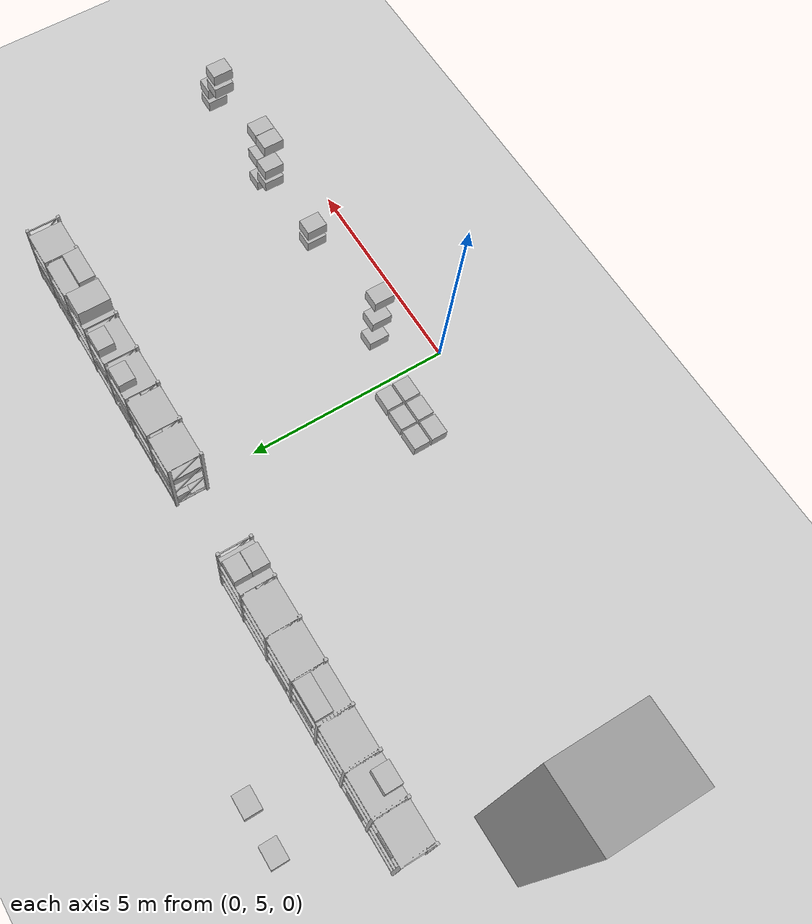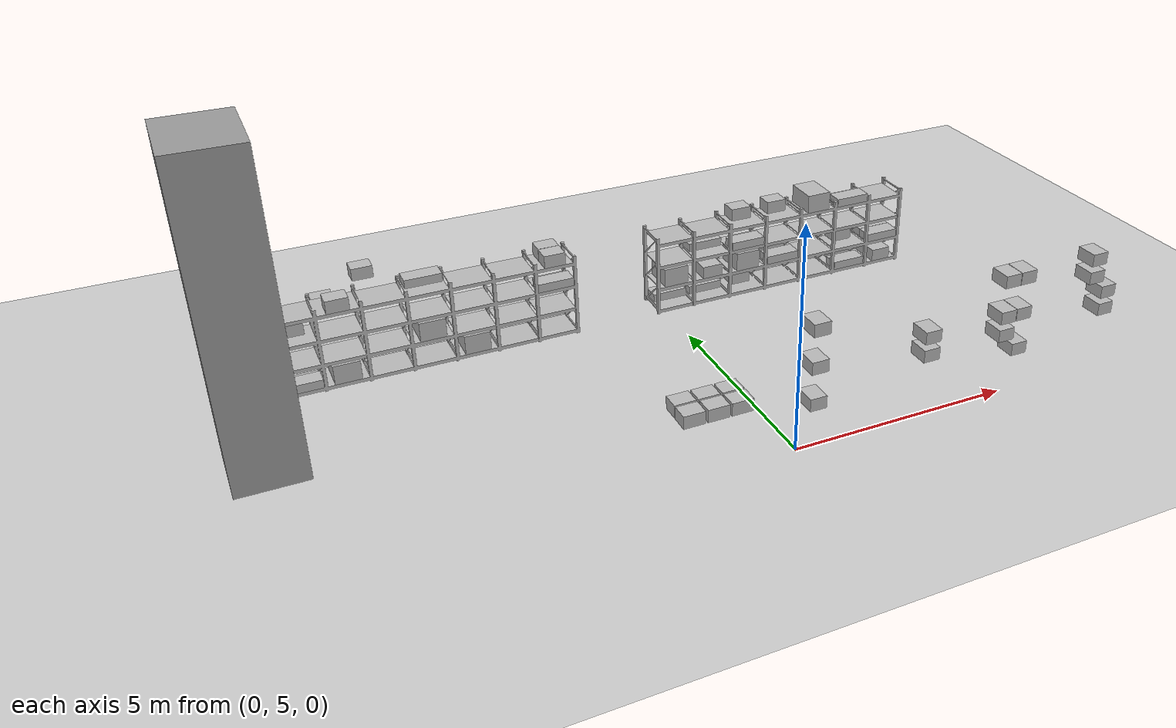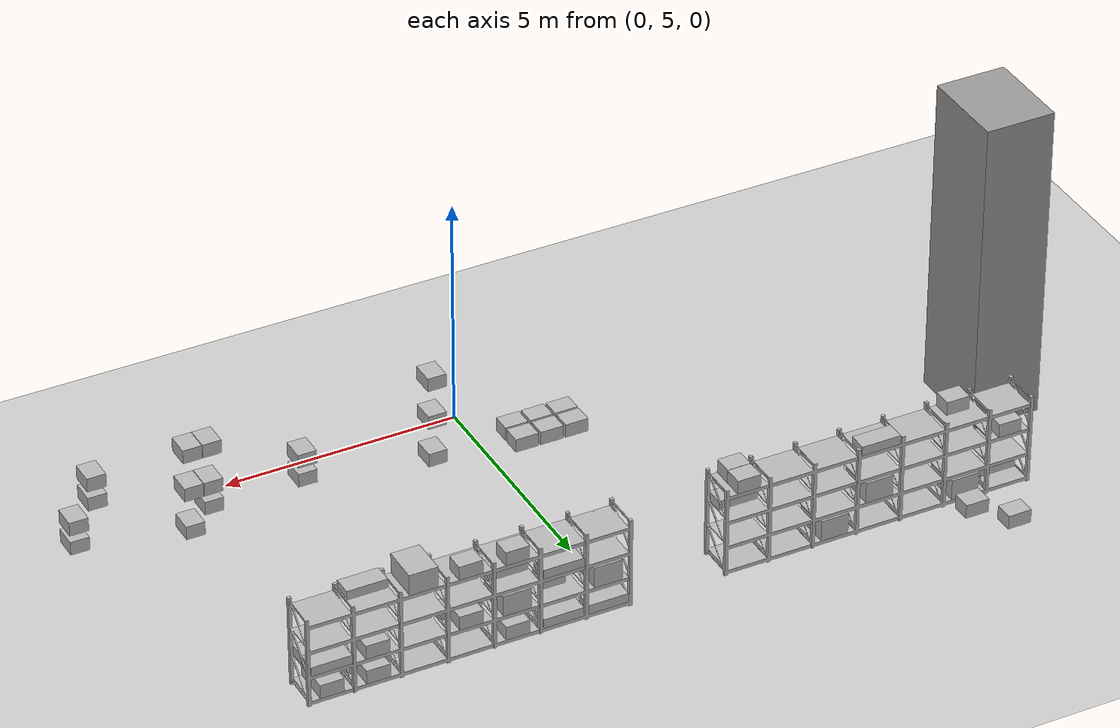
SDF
<sdf version="1.6">
 <world name="default">
  <model name="ground_plane">
   <static>1</static>
   <link name="link">
    <collision name="collision">
     <geometry><plane><normal>0 0 1</normal><size>100 100</size></plane></geometry>
     <surface><friction><ode><mu>100</mu><mu2>50</mu2></ode></friction></surface>
    </collision>
    <visual name="visual">
     <cast_shadows>0</cast_shadows>
     <geometry><plane><normal>0 0 1</normal><size>100 100</size></plane></geometry>
     <material>
      <script><uri>file://media/materials/scripts/gazebo.material</uri><name>Gazebo/Grey</name></script>
     </material>
    </visual>
   </link>
  </model>
  <model name="box_A_045">
   <pose>1.0549 6.1491 0.252 0 0 0</pose>
   <link name="link">
    <inertial>
     <mass>2.0</mass>
     <inertia><ixx>0.05667</ixx><iyy>0.04167</iyy><izz>0.06833</izz><ixy>0</ixy><ixz>0</ixz><iyz>0</iyz></inertia>
    </inertial>
    <collision name="collision">
     <geometry><box><size>0.4 0.5 0.3</size></box></geometry>
     <surface><friction><ode><mu>1.0</mu><mu2>1.0</mu2></ode></friction></surface>
    </collision>
    <visual name="visual">
     <cast_shadows>0</cast_shadows>
     <geometry><box><size>0.4 0.5 0.3</size></box></geometry>
     <material>
      <script>
       <uri>model://labeled_boxes/materials/scripts</uri>
       <uri>model://labeled_boxes/materials/textures</uri>
       <name>LabeledBox/A-045</name>
      </script>
     </material>
    </visual>
   </link>
  </model>
  <model name="box_A_046">
   <pose>1.0549 6.1491 1.152 0 0 0</pose>
   <link name="link">
    <inertial>
     <mass>2.0</mass>
     <inertia><ixx>0.05667</ixx><iyy>0.04167</iyy><izz>0.06833</izz><ixy>0</ixy><ixz>0</ixz><iyz>0</iyz></inertia>
    </inertial>
    <collision name="collision">
     <geometry><box><size>0.4 0.5 0.3</size></box></geometry>
     <surface><friction><ode><mu>1.0</mu><mu2>1.0</mu2></ode></friction></surface>
    </collision>
    <visual name="visual">
     <cast_shadows>0</cast_shadows>
     <geometry><box><size>0.4 0.5 0.3</size></box></geometry>
     <material>
      <script>
       <uri>model://labeled_boxes/materials/scripts</uri>
       <uri>model://labeled_boxes/materials/textures</uri>
       <name>LabeledBox/A-046</name>
      </script>
     </material>
    </visual>
   </link>
  </model>
  <model name="box_A_047">
   <pose>1.0549 6.1491 2.052 0 0 0</pose>
   <link name="link">
    <inertial>
     <mass>2.0</mass>
     <inertia><ixx>0.05667</ixx><iyy>0.04167</iyy><izz>0.06833</izz><ixy>0</ixy><ixz>0</ixz><iyz>0</iyz></inertia>
    </inertial>
    <collision name="collision">
     <geometry><box><size>0.4 0.5 0.3</size></box></geometry>
     <surface><friction><ode><mu>1.0</mu><mu2>1.0</mu2></ode></friction></surface>
    </collision>
    <visual name="visual">
     <cast_shadows>0</cast_shadows>
     <geometry><box><size>0.4 0.5 0.3</size></box></geometry>
     <material>
      <script>
       <uri>model://labeled_boxes/materials/scripts</uri>
       <uri>model://labeled_boxes/materials/textures</uri>
       <name>LabeledBox/A-047</name>
      </script>
     </material>
    </visual>
   </link>
  </model>
  <model name="box_A_079">
   <pose>3.8649 6.1491 0.702 0 0 0</pose>
   <link name="link">
    <inertial>
     <mass>2.0</mass>
     <inertia><ixx>0.05667</ixx><iyy>0.04167</iyy><izz>0.06833</izz><ixy>0</ixy><ixz>0</ixz><iyz>0</iyz></inertia>
    </inertial>
    <collision name="collision">
     <geometry><box><size>0.4 0.5 0.3</size></box></geometry>
     <surface><friction><ode><mu>1.0</mu><mu2>1.0</mu2></ode></friction></surface>
    </collision>
    <visual name="visual">
     <cast_shadows>0</cast_shadows>
     <geometry><box><size>0.4 0.5 0.3</size></box></geometry>
     <material>
      <script>
       <uri>model://labeled_boxes/materials/scripts</uri>
       <uri>model://labeled_boxes/materials/textures</uri>
       <name>LabeledBox/A-079</name>
      </script>
     </material>
    </visual>
   </link>
  </model>
  <model name="box_A_080">
   <pose>3.8649 6.1491 1.152 0 0 0</pose>
   <link name="link">
    <inertial>
     <mass>2.0</mass>
     <inertia><ixx>0.05667</ixx><iyy>0.04167</iyy><izz>0.06833</izz><ixy>0</ixy><ixz>0</ixz><iyz>0</iyz></inertia>
    </inertial>
    <collision name="collision">
     <geometry><box><size>0.4 0.5 0.3</size></box></geometry>
     <surface><friction><ode><mu>1.0</mu><mu2>1.0</mu2></ode></friction></surface>
    </collision>
    <visual name="visual">
     <cast_shadows>0</cast_shadows>
     <geometry><box><size>0.4 0.5 0.3</size></box></geometry>
     <material>
      <script>
       <uri>model://labeled_boxes/materials/scripts</uri>
       <uri>model://labeled_boxes/materials/textures</uri>
       <name>LabeledBox/A-080</name>
      </script>
     </material>
    </visual>
   </link>
  </model>
  <model name="box_A_105">
   <pose>6.2649 6.1491 0.252 0 0 0</pose>
   <link name="link">
    <inertial>
     <mass>2.0</mass>
     <inertia><ixx>0.05667</ixx><iyy>0.04167</iyy><izz>0.06833</izz><ixy>0</ixy><ixz>0</ixz><iyz>0</iyz></inertia>
    </inertial>
    <collision name="collision">
     <geometry><box><size>0.4 0.5 0.3</size></box></geometry>
     <surface><friction><ode><mu>1.0</mu><mu2>1.0</mu2></ode></friction></surface>
    </collision>
    <visual name="visual">
     <cast_shadows>0</cast_shadows>
     <geometry><box><size>0.4 0.5 0.3</size></box></geometry>
     <material>
      <script>
       <uri>model://labeled_boxes/materials/scripts</uri>
       <uri>model://labeled_boxes/materials/textures</uri>
       <name>LabeledBox/A-105</name>
      </script>
     </material>
    </visual>
   </link>
  </model>
  <model name="box_A_106">
   <pose>5.8549 6.1491 0.702 0 0 0</pose>
   <link name="link">
    <inertial>
     <mass>2.0</mass>
     <inertia><ixx>0.05667</ixx><iyy>0.04167</iyy><izz>0.06833</izz><ixy>0</ixy><ixz>0</ixz><iyz>0</iyz></inertia>
    </inertial>
    <collision name="collision">
     <geometry><box><size>0.4 0.5 0.3</size></box></geometry>
     <surface><friction><ode><mu>1.0</mu><mu2>1.0</mu2></ode></friction></surface>
    </collision>
    <visual name="visual">
     <cast_shadows>0</cast_shadows>
     <geometry><box><size>0.4 0.5 0.3</size></box></geometry>
     <material>
      <script>
       <uri>model://labeled_boxes/materials/scripts</uri>
       <uri>model://labeled_boxes/materials/textures</uri>
       <name>LabeledBox/A-106</name>
      </script>
     </material>
    </visual>
   </link>
  </model>
  <model name="box_A_107">
   <pose>5.8549 6.1491 1.152 0 0 0</pose>
   <link name="link">
    <inertial>
     <mass>2.0</mass>
     <inertia><ixx>0.05667</ixx><iyy>0.04167</iyy><izz>0.06833</izz><ixy>0</ixy><ixz>0</ixz><iyz>0</iyz></inertia>
    </inertial>
    <collision name="collision">
     <geometry><box><size>0.4 0.5 0.3</size></box></geometry>
     <surface><friction><ode><mu>1.0</mu><mu2>1.0</mu2></ode></friction></surface>
    </collision>
    <visual name="visual">
     <cast_shadows>0</cast_shadows>
     <geometry><box><size>0.4 0.5 0.3</size></box></geometry>
     <material>
      <script>
       <uri>model://labeled_boxes/materials/scripts</uri>
       <uri>model://labeled_boxes/materials/textures</uri>
       <name>LabeledBox/A-107</name>
      </script>
     </material>
    </visual>
   </link>
  </model>
  <model name="box_A_108">
   <pose>6.2649 6.1491 1.152 0 0 0</pose>
   <link name="link">
    <inertial>
     <mass>2.0</mass>
     <inertia><ixx>0.05667</ixx><iyy>0.04167</iyy><izz>0.06833</izz><ixy>0</ixy><ixz>0</ixz><iyz>0</iyz></inertia>
    </inertial>
    <collision name="collision">
     <geometry><box><size>0.4 0.5 0.3</size></box></geometry>
     <surface><friction><ode><mu>1.0</mu><mu2>1.0</mu2></ode></friction></surface>
    </collision>
    <visual name="visual">
     <cast_shadows>0</cast_shadows>
     <geometry><box><size>0.4 0.5 0.3</size></box></geometry>
     <material>
      <script>
       <uri>model://labeled_boxes/materials/scripts</uri>
       <uri>model://labeled_boxes/materials/textures</uri>
       <name>LabeledBox/A-108</name>
      </script>
     </material>
    </visual>
   </link>
  </model>
  <model name="box_A_109">
   <pose>5.8549 6.1491 2.052 0 0 0</pose>
   <link name="link">
    <inertial>
     <mass>2.0</mass>
     <inertia><ixx>0.05667</ixx><iyy>0.04167</iyy><izz>0.06833</izz><ixy>0</ixy><ixz>0</ixz><iyz>0</iyz></inertia>
    </inertial>
    <collision name="collision">
     <geometry><box><size>0.4 0.5 0.3</size></box></geometry>
     <surface><friction><ode><mu>1.0</mu><mu2>1.0</mu2></ode></friction></surface>
    </collision>
    <visual name="visual">
     <cast_shadows>0</cast_shadows>
     <geometry><box><size>0.4 0.5 0.3</size></box></geometry>
     <material>
      <script>
       <uri>model://labeled_boxes/materials/scripts</uri>
       <uri>model://labeled_boxes/materials/textures</uri>
       <name>LabeledBox/A-109</name>
      </script>
     </material>
    </visual>
   </link>
  </model>
  <model name="box_A_110">
   <pose>6.2649 6.1491 2.052 0 0 0</pose>
   <link name="link">
    <inertial>
     <mass>2.0</mass>
     <inertia><ixx>0.05667</ixx><iyy>0.04167</iyy><izz>0.06833</izz><ixy>0</ixy><ixz>0</ixz><iyz>0</iyz></inertia>
    </inertial>
    <collision name="collision">
     <geometry><box><size>0.4 0.5 0.3</size></box></geometry>
     <surface><friction><ode><mu>1.0</mu><mu2>1.0</mu2></ode></friction></surface>
    </collision>
    <visual name="visual">
     <cast_shadows>0</cast_shadows>
     <geometry><box><size>0.4 0.5 0.3</size></box></geometry>
     <material>
      <script>
       <uri>model://labeled_boxes/materials/scripts</uri>
       <uri>model://labeled_boxes/materials/textures</uri>
       <name>LabeledBox/A-110</name>
      </script>
     </material>
    </visual>
   </link>
  </model>
  <model name="box_A_143">
   <pose>8.6649 6.1491 0.702 0 0 0</pose>
   <link name="link">
    <inertial>
     <mass>2.0</mass>
     <inertia><ixx>0.05667</ixx><iyy>0.04167</iyy><izz>0.06833</izz><ixy>0</ixy><ixz>0</ixz><iyz>0</iyz></inertia>
    </inertial>
    <collision name="collision">
     <geometry><box><size>0.4 0.5 0.3</size></box></geometry>
     <surface><friction><ode><mu>1.0</mu><mu2>1.0</mu2></ode></friction></surface>
    </collision>
    <visual name="visual">
     <cast_shadows>0</cast_shadows>
     <geometry><box><size>0.4 0.5 0.3</size></box></geometry>
     <material>
      <script>
       <uri>model://labeled_boxes/materials/scripts</uri>
       <uri>model://labeled_boxes/materials/textures</uri>
       <name>LabeledBox/A-143</name>
      </script>
     </material>
    </visual>
   </link>
  </model>
  <model name="box_A_144">
   <pose>8.6649 6.1491 1.152 0 0 0</pose>
   <link name="link">
    <inertial>
     <mass>2.0</mass>
     <inertia><ixx>0.05667</ixx><iyy>0.04167</iyy><izz>0.06833</izz><ixy>0</ixy><ixz>0</ixz><iyz>0</iyz></inertia>
    </inertial>
    <collision name="collision">
     <geometry><box><size>0.4 0.5 0.3</size></box></geometry>
     <surface><friction><ode><mu>1.0</mu><mu2>1.0</mu2></ode></friction></surface>
    </collision>
    <visual name="visual">
     <cast_shadows>0</cast_shadows>
     <geometry><box><size>0.4 0.5 0.3</size></box></geometry>
     <material>
      <script>
       <uri>model://labeled_boxes/materials/scripts</uri>
       <uri>model://labeled_boxes/materials/textures</uri>
       <name>LabeledBox/A-144</name>
      </script>
     </material>
    </visual>
   </link>
  </model>
  <model name="box_A_145">
   <pose>8.2549 6.1491 1.602 0 0 0</pose>
   <link name="link">
    <inertial>
     <mass>2.0</mass>
     <inertia><ixx>0.05667</ixx><iyy>0.04167</iyy><izz>0.06833</izz><ixy>0</ixy><ixz>0</ixz><iyz>0</iyz></inertia>
    </inertial>
    <collision name="collision">
     <geometry><box><size>0.4 0.5 0.3</size></box></geometry>
     <surface><friction><ode><mu>1.0</mu><mu2>1.0</mu2></ode></friction></surface>
    </collision>
    <visual name="visual">
     <cast_shadows>0</cast_shadows>
     <geometry><box><size>0.4 0.5 0.3</size></box></geometry>
     <material>
      <script>
       <uri>model://labeled_boxes/materials/scripts</uri>
       <uri>model://labeled_boxes/materials/textures</uri>
       <name>LabeledBox/A-145</name>
      </script>
     </material>
    </visual>
   </link>
  </model>
  <model name="box_A_146">
   <pose>8.2549 6.1491 2.052 0 0 0</pose>
   <link name="link">
    <inertial>
     <mass>2.0</mass>
     <inertia><ixx>0.05667</ixx><iyy>0.04167</iyy><izz>0.06833</izz><ixy>0</ixy><ixz>0</ixz><iyz>0</iyz></inertia>
    </inertial>
    <collision name="collision">
     <geometry><box><size>0.4 0.5 0.3</size></box></geometry>
     <surface><friction><ode><mu>1.0</mu><mu2>1.0</mu2></ode></friction></surface>
    </collision>
    <visual name="visual">
     <cast_shadows>0</cast_shadows>
     <geometry><box><size>0.4 0.5 0.3</size></box></geometry>
     <material>
      <script>
       <uri>model://labeled_boxes/materials/scripts</uri>
       <uri>model://labeled_boxes/materials/textures</uri>
       <name>LabeledBox/A-146</name>
      </script>
     </material>
    </visual>
   </link>
  </model>
  <model name="box_A_148">
   <pose>-1.6882 6.3711 0.4792 0 0 1.5708</pose>
   <link name="link">
    <inertial>
     <mass>2.0</mass>
     <inertia><ixx>0.05667</ixx><iyy>0.04167</iyy><izz>0.06833</izz><ixy>0</ixy><ixz>0</ixz><iyz>0</iyz></inertia>
    </inertial>
    <collision name="collision">
     <geometry><box><size>0.4 0.5 0.3</size></box></geometry>
     <surface><friction><ode><mu>1.0</mu><mu2>1.0</mu2></ode></friction></surface>
    </collision>
    <visual name="visual">
     <cast_shadows>0</cast_shadows>
     <geometry><box><size>0.4 0.5 0.3</size></box></geometry>
     <material>
      <script>
       <uri>model://labeled_boxes/materials/scripts</uri>
       <uri>model://labeled_boxes/materials/textures</uri>
       <name>LabeledBox/A-148</name>
      </script>
     </material>
    </visual>
   </link>
  </model>
  <model name="box_A_149">
   <pose>-1.6882 6.8211 0.4792 0 0 1.5708</pose>
   <link name="link">
    <inertial>
     <mass>2.0</mass>
     <inertia><ixx>0.05667</ixx><iyy>0.04167</iyy><izz>0.06833</izz><ixy>0</ixy><ixz>0</ixz><iyz>0</iyz></inertia>
    </inertial>
    <collision name="collision">
     <geometry><box><size>0.4 0.5 0.3</size></box></geometry>
     <surface><friction><ode><mu>1.0</mu><mu2>1.0</mu2></ode></friction></surface>
    </collision>
    <visual name="visual">
     <cast_shadows>0</cast_shadows>
     <geometry><box><size>0.4 0.5 0.3</size></box></geometry>
     <material>
      <script>
       <uri>model://labeled_boxes/materials/scripts</uri>
       <uri>model://labeled_boxes/materials/textures</uri>
       <name>LabeledBox/A-149</name>
      </script>
     </material>
    </visual>
   </link>
  </model>
  <model name="box_A_151">
   <pose>-1.1382 6.3711 0.4792 0 0 1.5708</pose>
   <link name="link">
    <inertial>
     <mass>2.0</mass>
     <inertia><ixx>0.05667</ixx><iyy>0.04167</iyy><izz>0.06833</izz><ixy>0</ixy><ixz>0</ixz><iyz>0</iyz></inertia>
    </inertial>
    <collision name="collision">
     <geometry><box><size>0.4 0.5 0.3</size></box></geometry>
     <surface><friction><ode><mu>1.0</mu><mu2>1.0</mu2></ode></friction></surface>
    </collision>
    <visual name="visual">
     <cast_shadows>0</cast_shadows>
     <geometry><box><size>0.4 0.5 0.3</size></box></geometry>
     <material>
      <script>
       <uri>model://labeled_boxes/materials/scripts</uri>
       <uri>model://labeled_boxes/materials/textures</uri>
       <name>LabeledBox/A-151</name>
      </script>
     </material>
    </visual>
   </link>
  </model>
  <model name="box_A_152">
   <pose>-1.1382 6.8211 0.4792 0 0 1.5708</pose>
   <link name="link">
    <inertial>
     <mass>2.0</mass>
     <inertia><ixx>0.05667</ixx><iyy>0.04167</iyy><izz>0.06833</izz><ixy>0</ixy><ixz>0</ixz><iyz>0</iyz></inertia>
    </inertial>
    <collision name="collision">
     <geometry><box><size>0.4 0.5 0.3</size></box></geometry>
     <surface><friction><ode><mu>1.0</mu><mu2>1.0</mu2></ode></friction></surface>
    </collision>
    <visual name="visual">
     <cast_shadows>0</cast_shadows>
     <geometry><box><size>0.4 0.5 0.3</size></box></geometry>
     <material>
      <script>
       <uri>model://labeled_boxes/materials/scripts</uri>
       <uri>model://labeled_boxes/materials/textures</uri>
       <name>LabeledBox/A-152</name>
      </script>
     </material>
    </visual>
   </link>
  </model>
  <model name="box_A_154">
   <pose>-0.58817 6.3711 0.4792 0 0 1.5708</pose>
   <link name="link">
    <inertial>
     <mass>2.0</mass>
     <inertia><ixx>0.05667</ixx><iyy>0.04167</iyy><izz>0.06833</izz><ixy>0</ixy><ixz>0</ixz><iyz>0</iyz></inertia>
    </inertial>
    <collision name="collision">
     <geometry><box><size>0.4 0.5 0.3</size></box></geometry>
     <surface><friction><ode><mu>1.0</mu><mu2>1.0</mu2></ode></friction></surface>
    </collision>
    <visual name="visual">
     <cast_shadows>0</cast_shadows>
     <geometry><box><size>0.4 0.5 0.3</size></box></geometry>
     <material>
      <script>
       <uri>model://labeled_boxes/materials/scripts</uri>
       <uri>model://labeled_boxes/materials/textures</uri>
       <name>LabeledBox/A-154</name>
      </script>
     </material>
    </visual>
   </link>
  </model>
  <model name="box_A_155">
   <pose>-0.58817 6.8211 0.4792 0 0 1.5708</pose>
   <link name="link">
    <inertial>
     <mass>2.0</mass>
     <inertia><ixx>0.05667</ixx><iyy>0.04167</iyy><izz>0.06833</izz><ixy>0</ixy><ixz>0</ixz><iyz>0</iyz></inertia>
    </inertial>
    <collision name="collision">
     <geometry><box><size>0.4 0.5 0.3</size></box></geometry>
     <surface><friction><ode><mu>1.0</mu><mu2>1.0</mu2></ode></friction></surface>
    </collision>
    <visual name="visual">
     <cast_shadows>0</cast_shadows>
     <geometry><box><size>0.4 0.5 0.3</size></box></geometry>
     <material>
      <script>
       <uri>model://labeled_boxes/materials/scripts</uri>
       <uri>model://labeled_boxes/materials/textures</uri>
       <name>LabeledBox/A-155</name>
      </script>
     </material>
    </visual>
   </link>
  </model>
  <model name="box_D_069">
   <pose>-7.583 13.85 0.832 0 0 -1.5708</pose>
   <link name="link">
    <inertial>
     <mass>2.0</mass>
     <inertia><ixx>0.05667</ixx><iyy>0.04167</iyy><izz>0.06833</izz><ixy>0</ixy><ixz>0</ixz><iyz>0</iyz></inertia>
    </inertial>
    <collision name="collision">
     <geometry><box><size>0.4 0.5 0.3</size></box></geometry>
     <surface><friction><ode><mu>1.0</mu><mu2>1.0</mu2></ode></friction></surface>
    </collision>
    <visual name="visual">
     <cast_shadows>0</cast_shadows>
     <geometry><box><size>0.4 0.5 0.3</size></box></geometry>
     <material>
      <script>
       <uri>model://labeled_boxes/materials/scripts</uri>
       <uri>model://labeled_boxes/materials/textures</uri>
       <name>LabeledBox/D-069</name>
      </script>
     </material>
    </visual>
   </link>
  </model>
  <model name="box_D_072">
   <pose>-6.6115 13.85 1.412 0 0 -1.5708</pose>
   <link name="link">
    <inertial>
     <mass>2.0</mass>
     <inertia><ixx>0.05667</ixx><iyy>0.04167</iyy><izz>0.06833</izz><ixy>0</ixy><ixz>0</ixz><iyz>0</iyz></inertia>
    </inertial>
    <collision name="collision">
     <geometry><box><size>0.4 0.5 0.3</size></box></geometry>
     <surface><friction><ode><mu>1.0</mu><mu2>1.0</mu2></ode></friction></surface>
    </collision>
    <visual name="visual">
     <cast_shadows>0</cast_shadows>
     <geometry><box><size>0.4 0.5 0.3</size></box></geometry>
     <material>
      <script>
       <uri>model://labeled_boxes/materials/scripts</uri>
       <uri>model://labeled_boxes/materials/textures</uri>
       <name>LabeledBox/D-072</name>
      </script>
     </material>
    </visual>
   </link>
  </model>
  <include>
   <name>rack_D5_0</name>
   <uri>model://warehouse_rack_4lvl_7bay</uri>
   <pose>-5.6401 11.655 0 0 0 -1.5708</pose>
  </include>
  <model name="box_D_101">
   <pose>-8.5369 11.45 0.202 0 0 -1.5708</pose>
   <link name="link">
    <inertial>
     <mass>4.0</mass>
     <inertia><ixx>0.25417</ixx><iyy>0.06667</iyy><izz>0.29417</izz><ixy>0</ixy><ixz>0</ixz><iyz>0</iyz></inertia>
    </inertial>
    <collision name="collision">
     <geometry><box><size>0.4 0.85 0.2</size></box></geometry>
     <surface><friction><ode><mu>1.0</mu><mu2>1.0</mu2></ode></friction></surface>
    </collision>
    <visual name="visual">
     <cast_shadows>0</cast_shadows>
     <geometry><box><size>0.4 0.85 0.2</size></box></geometry>
     <material>
      <script>
       <uri>model://labeled_boxes/materials/scripts</uri>
       <uri>model://labeled_boxes/materials/textures</uri>
       <name>LabeledBox/D-101</name>
      </script>
     </material>
    </visual>
   </link>
  </model>
  <model name="box_D_102">
   <pose>-8.5369 11.86 1.412 0 0 -1.5708</pose>
   <link name="link">
    <inertial>
     <mass>2.0</mass>
     <inertia><ixx>0.05667</ixx><iyy>0.04167</iyy><izz>0.06833</izz><ixy>0</ixy><ixz>0</ixz><iyz>0</iyz></inertia>
    </inertial>
    <collision name="collision">
     <geometry><box><size>0.4 0.5 0.3</size></box></geometry>
     <surface><friction><ode><mu>1.0</mu><mu2>1.0</mu2></ode></friction></surface>
    </collision>
    <visual name="visual">
     <cast_shadows>0</cast_shadows>
     <geometry><box><size>0.4 0.5 0.3</size></box></geometry>
     <material>
      <script>
       <uri>model://labeled_boxes/materials/scripts</uri>
       <uri>model://labeled_boxes/materials/textures</uri>
       <name>LabeledBox/D-102</name>
      </script>
     </material>
    </visual>
   </link>
  </model>
  <model name="box_D_103">
   <pose>-7.583 11.655 0.327 0 0 -1.5708</pose>
   <link name="link">
    <inertial>
     <mass>8.0</mass>
     <inertia><ixx>0.37500</ixx><iyy>0.54060</iyy><izz>0.64560</izz><ixy>0</ixy><ixz>0</ixz><iyz>0</iyz></inertia>
    </inertial>
    <collision name="collision">
     <geometry><box><size>0.78 0.6 0.45</size></box></geometry>
     <surface><friction><ode><mu>1.0</mu><mu2>1.0</mu2></ode></friction></surface>
    </collision>
    <visual name="visual">
     <cast_shadows>0</cast_shadows>
     <geometry><box><size>0.78 0.6 0.45</size></box></geometry>
     <material>
      <script>
       <uri>model://labeled_boxes/materials/scripts</uri>
       <uri>model://labeled_boxes/materials/textures</uri>
       <name>LabeledBox/D-103</name>
      </script>
     </material>
    </visual>
   </link>
  </model>
  <model name="box_D_104">
   <pose>-7.583 11.45 1.992 0 0 -1.5708</pose>
   <link name="link">
    <inertial>
     <mass>2.0</mass>
     <inertia><ixx>0.05667</ixx><iyy>0.04167</iyy><izz>0.06833</izz><ixy>0</ixy><ixz>0</ixz><iyz>0</iyz></inertia>
    </inertial>
    <collision name="collision">
     <geometry><box><size>0.4 0.5 0.3</size></box></geometry>
     <surface><friction><ode><mu>1.0</mu><mu2>1.0</mu2></ode></friction></surface>
    </collision>
    <visual name="visual">
     <cast_shadows>0</cast_shadows>
     <geometry><box><size>0.4 0.5 0.3</size></box></geometry>
     <material>
      <script>
       <uri>model://labeled_boxes/materials/scripts</uri>
       <uri>model://labeled_boxes/materials/textures</uri>
       <name>LabeledBox/D-104</name>
      </script>
     </material>
    </visual>
   </link>
  </model>
  <model name="box_D_105">
   <pose>-5.6401 11.655 0.907 0 0 -1.5708</pose>
   <link name="link">
    <inertial>
     <mass>8.0</mass>
     <inertia><ixx>0.37500</ixx><iyy>0.54060</iyy><izz>0.64560</izz><ixy>0</ixy><ixz>0</ixz><iyz>0</iyz></inertia>
    </inertial>
    <collision name="collision">
     <geometry><box><size>0.78 0.6 0.45</size></box></geometry>
     <surface><friction><ode><mu>1.0</mu><mu2>1.0</mu2></ode></friction></surface>
    </collision>
    <visual name="visual">
     <cast_shadows>0</cast_shadows>
     <geometry><box><size>0.78 0.6 0.45</size></box></geometry>
     <material>
      <script>
       <uri>model://labeled_boxes/materials/scripts</uri>
       <uri>model://labeled_boxes/materials/textures</uri>
       <name>LabeledBox/D-105</name>
      </script>
     </material>
    </visual>
   </link>
  </model>
  <model name="box_D_106">
   <pose>-5.6401 11.86 1.942 0 0 -1.5708</pose>
   <link name="link">
    <inertial>
     <mass>4.0</mass>
     <inertia><ixx>0.25417</ixx><iyy>0.06667</iyy><izz>0.29417</izz><ixy>0</ixy><ixz>0</ixz><iyz>0</iyz></inertia>
    </inertial>
    <collision name="collision">
     <geometry><box><size>0.4 0.85 0.2</size></box></geometry>
     <surface><friction><ode><mu>1.0</mu><mu2>1.0</mu2></ode></friction></surface>
    </collision>
    <visual name="visual">
     <cast_shadows>0</cast_shadows>
     <geometry><box><size>0.4 0.85 0.2</size></box></geometry>
     <material>
      <script>
       <uri>model://labeled_boxes/materials/scripts</uri>
       <uri>model://labeled_boxes/materials/textures</uri>
       <name>LabeledBox/D-106</name>
      </script>
     </material>
    </visual>
   </link>
  </model>
  <model name="box_D_107">
   <pose>-4.6687 11.655 0.327 0 0 -1.5708</pose>
   <link name="link">
    <inertial>
     <mass>8.0</mass>
     <inertia><ixx>0.37500</ixx><iyy>0.54060</iyy><izz>0.64560</izz><ixy>0</ixy><ixz>0</ixz><iyz>0</iyz></inertia>
    </inertial>
    <collision name="collision">
     <geometry><box><size>0.78 0.6 0.45</size></box></geometry>
     <surface><friction><ode><mu>1.0</mu><mu2>1.0</mu2></ode></friction></surface>
    </collision>
    <visual name="visual">
     <cast_shadows>0</cast_shadows>
     <geometry><box><size>0.78 0.6 0.45</size></box></geometry>
     <material>
      <script>
       <uri>model://labeled_boxes/materials/scripts</uri>
       <uri>model://labeled_boxes/materials/textures</uri>
       <name>LabeledBox/D-107</name>
      </script>
     </material>
    </visual>
   </link>
  </model>
  <model name="box_D_108">
   <pose>-2.7433 11.45 1.362 0 0 -1.5708</pose>
   <link name="link">
    <inertial>
     <mass>4.0</mass>
     <inertia><ixx>0.25417</ixx><iyy>0.06667</iyy><izz>0.29417</izz><ixy>0</ixy><ixz>0</ixz><iyz>0</iyz></inertia>
    </inertial>
    <collision name="collision">
     <geometry><box><size>0.4 0.85 0.2</size></box></geometry>
     <surface><friction><ode><mu>1.0</mu><mu2>1.0</mu2></ode></friction></surface>
    </collision>
    <visual name="visual">
     <cast_shadows>0</cast_shadows>
     <geometry><box><size>0.4 0.85 0.2</size></box></geometry>
     <material>
      <script>
       <uri>model://labeled_boxes/materials/scripts</uri>
       <uri>model://labeled_boxes/materials/textures</uri>
       <name>LabeledBox/D-108</name>
      </script>
     </material>
    </visual>
   </link>
  </model>
  <model name="box_D_109">
   <pose>-2.7433 11.86 1.992 0 0 -1.5708</pose>
   <link name="link">
    <inertial>
     <mass>2.0</mass>
     <inertia><ixx>0.05667</ixx><iyy>0.04167</iyy><izz>0.06833</izz><ixy>0</ixy><ixz>0</ixz><iyz>0</iyz></inertia>
    </inertial>
    <collision name="collision">
     <geometry><box><size>0.4 0.5 0.3</size></box></geometry>
     <surface><friction><ode><mu>1.0</mu><mu2>1.0</mu2></ode></friction></surface>
    </collision>
    <visual name="visual">
     <cast_shadows>0</cast_shadows>
     <geometry><box><size>0.4 0.5 0.3</size></box></geometry>
     <material>
      <script>
       <uri>model://labeled_boxes/materials/scripts</uri>
       <uri>model://labeled_boxes/materials/textures</uri>
       <name>LabeledBox/D-109</name>
      </script>
     </material>
    </visual>
   </link>
  </model>
  <model name="box_D_110">
   <pose>-2.7433 11.45 1.992 0 0 -1.5708</pose>
   <link name="link">
    <inertial>
     <mass>2.0</mass>
     <inertia><ixx>0.05667</ixx><iyy>0.04167</iyy><izz>0.06833</izz><ixy>0</ixy><ixz>0</ixz><iyz>0</iyz></inertia>
    </inertial>
    <collision name="collision">
     <geometry><box><size>0.4 0.5 0.3</size></box></geometry>
     <surface><friction><ode><mu>1.0</mu><mu2>1.0</mu2></ode></friction></surface>
    </collision>
    <visual name="visual">
     <cast_shadows>0</cast_shadows>
     <geometry><box><size>0.4 0.5 0.3</size></box></geometry>
     <material>
      <script>
       <uri>model://labeled_boxes/materials/scripts</uri>
       <uri>model://labeled_boxes/materials/textures</uri>
       <name>LabeledBox/D-110</name>
      </script>
     </material>
    </visual>
   </link>
  </model>
  <include>
   <name>rack_D5_1</name>
   <uri>model://warehouse_rack_4lvl_7bay</uri>
   <pose>3.1599 11.655 0 0 0 -1.5708</pose>
  </include>
  <model name="box_D_111">
   <pose>0.26311 11.86 0.202 0 0 -1.5708</pose>
   <link name="link">
    <inertial>
     <mass>4.0</mass>
     <inertia><ixx>0.25417</ixx><iyy>0.06667</iyy><izz>0.29417</izz><ixy>0</ixy><ixz>0</ixz><iyz>0</iyz></inertia>
    </inertial>
    <collision name="collision">
     <geometry><box><size>0.4 0.85 0.2</size></box></geometry>
     <surface><friction><ode><mu>1.0</mu><mu2>1.0</mu2></ode></friction></surface>
    </collision>
    <visual name="visual">
     <cast_shadows>0</cast_shadows>
     <geometry><box><size>0.4 0.85 0.2</size></box></geometry>
     <material>
      <script>
       <uri>model://labeled_boxes/materials/scripts</uri>
       <uri>model://labeled_boxes/materials/textures</uri>
       <name>LabeledBox/D-111</name>
      </script>
     </material>
    </visual>
   </link>
  </model>
  <model name="box_D_112">
   <pose>0.26311 11.655 0.907 0 0 -1.5708</pose>
   <link name="link">
    <inertial>
     <mass>8.0</mass>
     <inertia><ixx>0.37500</ixx><iyy>0.54060</iyy><izz>0.64560</izz><ixy>0</ixy><ixz>0</ixz><iyz>0</iyz></inertia>
    </inertial>
    <collision name="collision">
     <geometry><box><size>0.78 0.6 0.45</size></box></geometry>
     <surface><friction><ode><mu>1.0</mu><mu2>1.0</mu2></ode></friction></surface>
    </collision>
    <visual name="visual">
     <cast_shadows>0</cast_shadows>
     <geometry><box><size>0.78 0.6 0.45</size></box></geometry>
     <material>
      <script>
       <uri>model://labeled_boxes/materials/scripts</uri>
       <uri>model://labeled_boxes/materials/textures</uri>
       <name>LabeledBox/D-112</name>
      </script>
     </material>
    </visual>
   </link>
  </model>
  <model name="box_D_113">
   <pose>1.217 11.86 0.202 0 0 -1.5708</pose>
   <link name="link">
    <inertial>
     <mass>4.0</mass>
     <inertia><ixx>0.25417</ixx><iyy>0.06667</iyy><izz>0.29417</izz><ixy>0</ixy><ixz>0</ixz><iyz>0</iyz></inertia>
    </inertial>
    <collision name="collision">
     <geometry><box><size>0.4 0.85 0.2</size></box></geometry>
     <surface><friction><ode><mu>1.0</mu><mu2>1.0</mu2></ode></friction></surface>
    </collision>
    <visual name="visual">
     <cast_shadows>0</cast_shadows>
     <geometry><box><size>0.4 0.85 0.2</size></box></geometry>
     <material>
      <script>
       <uri>model://labeled_boxes/materials/scripts</uri>
       <uri>model://labeled_boxes/materials/textures</uri>
       <name>LabeledBox/D-113</name>
      </script>
     </material>
    </visual>
   </link>
  </model>
  <model name="box_D_114">
   <pose>1.217 11.45 0.832 0 0 -1.5708</pose>
   <link name="link">
    <inertial>
     <mass>2.0</mass>
     <inertia><ixx>0.05667</ixx><iyy>0.04167</iyy><izz>0.06833</izz><ixy>0</ixy><ixz>0</ixz><iyz>0</iyz></inertia>
    </inertial>
    <collision name="collision">
     <geometry><box><size>0.4 0.5 0.3</size></box></geometry>
     <surface><friction><ode><mu>1.0</mu><mu2>1.0</mu2></ode></friction></surface>
    </collision>
    <visual name="visual">
     <cast_shadows>0</cast_shadows>
     <geometry><box><size>0.4 0.5 0.3</size></box></geometry>
     <material>
      <script>
       <uri>model://labeled_boxes/materials/scripts</uri>
       <uri>model://labeled_boxes/materials/textures</uri>
       <name>LabeledBox/D-114</name>
      </script>
     </material>
    </visual>
   </link>
  </model>
  <model name="box_D_115">
   <pose>1.217 11.86 1.362 0 0 -1.5708</pose>
   <link name="link">
    <inertial>
     <mass>4.0</mass>
     <inertia><ixx>0.25417</ixx><iyy>0.06667</iyy><izz>0.29417</izz><ixy>0</ixy><ixz>0</ixz><iyz>0</iyz></inertia>
    </inertial>
    <collision name="collision">
     <geometry><box><size>0.4 0.85 0.2</size></box></geometry>
     <surface><friction><ode><mu>1.0</mu><mu2>1.0</mu2></ode></friction></surface>
    </collision>
    <visual name="visual">
     <cast_shadows>0</cast_shadows>
     <geometry><box><size>0.4 0.85 0.2</size></box></geometry>
     <material>
      <script>
       <uri>model://labeled_boxes/materials/scripts</uri>
       <uri>model://labeled_boxes/materials/textures</uri>
       <name>LabeledBox/D-115</name>
      </script>
     </material>
    </visual>
   </link>
  </model>
  <model name="box_D_116">
   <pose>2.1885 11.86 0.252 0 0 -1.5708</pose>
   <link name="link">
    <inertial>
     <mass>2.0</mass>
     <inertia><ixx>0.05667</ixx><iyy>0.04167</iyy><izz>0.06833</izz><ixy>0</ixy><ixz>0</ixz><iyz>0</iyz></inertia>
    </inertial>
    <collision name="collision">
     <geometry><box><size>0.4 0.5 0.3</size></box></geometry>
     <surface><friction><ode><mu>1.0</mu><mu2>1.0</mu2></ode></friction></surface>
    </collision>
    <visual name="visual">
     <cast_shadows>0</cast_shadows>
     <geometry><box><size>0.4 0.5 0.3</size></box></geometry>
     <material>
      <script>
       <uri>model://labeled_boxes/materials/scripts</uri>
       <uri>model://labeled_boxes/materials/textures</uri>
       <name>LabeledBox/D-116</name>
      </script>
     </material>
    </visual>
   </link>
  </model>
  <model name="box_D_117">
   <pose>2.1885 11.655 0.907 0 0 -1.5708</pose>
   <link name="link">
    <inertial>
     <mass>8.0</mass>
     <inertia><ixx>0.37500</ixx><iyy>0.54060</iyy><izz>0.64560</izz><ixy>0</ixy><ixz>0</ixz><iyz>0</iyz></inertia>
    </inertial>
    <collision name="collision">
     <geometry><box><size>0.78 0.6 0.45</size></box></geometry>
     <surface><friction><ode><mu>1.0</mu><mu2>1.0</mu2></ode></friction></surface>
    </collision>
    <visual name="visual">
     <cast_shadows>0</cast_shadows>
     <geometry><box><size>0.78 0.6 0.45</size></box></geometry>
     <material>
      <script>
       <uri>model://labeled_boxes/materials/scripts</uri>
       <uri>model://labeled_boxes/materials/textures</uri>
       <name>LabeledBox/D-117</name>
      </script>
     </material>
    </visual>
   </link>
  </model>
  <model name="box_D_118">
   <pose>2.1885 11.45 1.362 0 0 -1.5708</pose>
   <link name="link">
    <inertial>
     <mass>4.0</mass>
     <inertia><ixx>0.25417</ixx><iyy>0.06667</iyy><izz>0.29417</izz><ixy>0</ixy><ixz>0</ixz><iyz>0</iyz></inertia>
    </inertial>
    <collision name="collision">
     <geometry><box><size>0.4 0.85 0.2</size></box></geometry>
     <surface><friction><ode><mu>1.0</mu><mu2>1.0</mu2></ode></friction></surface>
    </collision>
    <visual name="visual">
     <cast_shadows>0</cast_shadows>
     <geometry><box><size>0.4 0.85 0.2</size></box></geometry>
     <material>
      <script>
       <uri>model://labeled_boxes/materials/scripts</uri>
       <uri>model://labeled_boxes/materials/textures</uri>
       <name>LabeledBox/D-118</name>
      </script>
     </material>
    </visual>
   </link>
  </model>
  <model name="box_D_119">
   <pose>2.1885 11.86 1.992 0 0 -1.5708</pose>
   <link name="link">
    <inertial>
     <mass>2.0</mass>
     <inertia><ixx>0.05667</ixx><iyy>0.04167</iyy><izz>0.06833</izz><ixy>0</ixy><ixz>0</ixz><iyz>0</iyz></inertia>
    </inertial>
    <collision name="collision">
     <geometry><box><size>0.4 0.5 0.3</size></box></geometry>
     <surface><friction><ode><mu>1.0</mu><mu2>1.0</mu2></ode></friction></surface>
    </collision>
    <visual name="visual">
     <cast_shadows>0</cast_shadows>
     <geometry><box><size>0.4 0.5 0.3</size></box></geometry>
     <material>
      <script>
       <uri>model://labeled_boxes/materials/scripts</uri>
       <uri>model://labeled_boxes/materials/textures</uri>
       <name>LabeledBox/D-119</name>
      </script>
     </material>
    </visual>
   </link>
  </model>
  <model name="box_D_120">
   <pose>3.1599 11.86 0.832 0 0 -1.5708</pose>
   <link name="link">
    <inertial>
     <mass>2.0</mass>
     <inertia><ixx>0.05667</ixx><iyy>0.04167</iyy><izz>0.06833</izz><ixy>0</ixy><ixz>0</ixz><iyz>0</iyz></inertia>
    </inertial>
    <collision name="collision">
     <geometry><box><size>0.4 0.5 0.3</size></box></geometry>
     <surface><friction><ode><mu>1.0</mu><mu2>1.0</mu2></ode></friction></surface>
    </collision>
    <visual name="visual">
     <cast_shadows>0</cast_shadows>
     <geometry><box><size>0.4 0.5 0.3</size></box></geometry>
     <material>
      <script>
       <uri>model://labeled_boxes/materials/scripts</uri>
       <uri>model://labeled_boxes/materials/textures</uri>
       <name>LabeledBox/D-120</name>
      </script>
     </material>
    </visual>
   </link>
  </model>
  <model name="box_D_121">
   <pose>3.1599 11.45 0.782 0 0 -1.5708</pose>
   <link name="link">
    <inertial>
     <mass>4.0</mass>
     <inertia><ixx>0.25417</ixx><iyy>0.06667</iyy><izz>0.29417</izz><ixy>0</ixy><ixz>0</ixz><iyz>0</iyz></inertia>
    </inertial>
    <collision name="collision">
     <geometry><box><size>0.4 0.85 0.2</size></box></geometry>
     <surface><friction><ode><mu>1.0</mu><mu2>1.0</mu2></ode></friction></surface>
    </collision>
    <visual name="visual">
     <cast_shadows>0</cast_shadows>
     <geometry><box><size>0.4 0.85 0.2</size></box></geometry>
     <material>
      <script>
       <uri>model://labeled_boxes/materials/scripts</uri>
       <uri>model://labeled_boxes/materials/textures</uri>
       <name>LabeledBox/D-121</name>
      </script>
     </material>
    </visual>
   </link>
  </model>
  <model name="box_D_122">
   <pose>3.1599 11.86 1.992 0 0 -1.5708</pose>
   <link name="link">
    <inertial>
     <mass>2.0</mass>
     <inertia><ixx>0.05667</ixx><iyy>0.04167</iyy><izz>0.06833</izz><ixy>0</ixy><ixz>0</ixz><iyz>0</iyz></inertia>
    </inertial>
    <collision name="collision">
     <geometry><box><size>0.4 0.5 0.3</size></box></geometry>
     <surface><friction><ode><mu>1.0</mu><mu2>1.0</mu2></ode></friction></surface>
    </collision>
    <visual name="visual">
     <cast_shadows>0</cast_shadows>
     <geometry><box><size>0.4 0.5 0.3</size></box></geometry>
     <material>
      <script>
       <uri>model://labeled_boxes/materials/scripts</uri>
       <uri>model://labeled_boxes/materials/textures</uri>
       <name>LabeledBox/D-122</name>
      </script>
     </material>
    </visual>
   </link>
  </model>
  <model name="box_D_123">
   <pose>4.1313 11.655 2.067 0 0 -1.5708</pose>
   <link name="link">
    <inertial>
     <mass>8.0</mass>
     <inertia><ixx>0.37500</ixx><iyy>0.54060</iyy><izz>0.64560</izz><ixy>0</ixy><ixz>0</ixz><iyz>0</iyz></inertia>
    </inertial>
    <collision name="collision">
     <geometry><box><size>0.78 0.6 0.45</size></box></geometry>
     <surface><friction><ode><mu>1.0</mu><mu2>1.0</mu2></ode></friction></surface>
    </collision>
    <visual name="visual">
     <cast_shadows>0</cast_shadows>
     <geometry><box><size>0.78 0.6 0.45</size></box></geometry>
     <material>
      <script>
       <uri>model://labeled_boxes/materials/scripts</uri>
       <uri>model://labeled_boxes/materials/textures</uri>
       <name>LabeledBox/D-123</name>
      </script>
     </material>
    </visual>
   </link>
  </model>
  <model name="box_D_124">
   <pose>5.1028 11.86 0.252 0 0 -1.5708</pose>
   <link name="link">
    <inertial>
     <mass>2.0</mass>
     <inertia><ixx>0.05667</ixx><iyy>0.04167</iyy><izz>0.06833</izz><ixy>0</ixy><ixz>0</ixz><iyz>0</iyz></inertia>
    </inertial>
    <collision name="collision">
     <geometry><box><size>0.4 0.5 0.3</size></box></geometry>
     <surface><friction><ode><mu>1.0</mu><mu2>1.0</mu2></ode></friction></surface>
    </collision>
    <visual name="visual">
     <cast_shadows>0</cast_shadows>
     <geometry><box><size>0.4 0.5 0.3</size></box></geometry>
     <material>
      <script>
       <uri>model://labeled_boxes/materials/scripts</uri>
       <uri>model://labeled_boxes/materials/textures</uri>
       <name>LabeledBox/D-124</name>
      </script>
     </material>
    </visual>
   </link>
  </model>
  <model name="box_D_125">
   <pose>5.1028 11.45 0.202 0 0 -1.5708</pose>
   <link name="link">
    <inertial>
     <mass>4.0</mass>
     <inertia><ixx>0.25417</ixx><iyy>0.06667</iyy><izz>0.29417</izz><ixy>0</ixy><ixz>0</ixz><iyz>0</iyz></inertia>
    </inertial>
    <collision name="collision">
     <geometry><box><size>0.4 0.85 0.2</size></box></geometry>
     <surface><friction><ode><mu>1.0</mu><mu2>1.0</mu2></ode></friction></surface>
    </collision>
    <visual name="visual">
     <cast_shadows>0</cast_shadows>
     <geometry><box><size>0.4 0.85 0.2</size></box></geometry>
     <material>
      <script>
       <uri>model://labeled_boxes/materials/scripts</uri>
       <uri>model://labeled_boxes/materials/textures</uri>
       <name>LabeledBox/D-125</name>
      </script>
     </material>
    </visual>
   </link>
  </model>
  <model name="box_D_126">
   <pose>5.1028 11.86 0.832 0 0 -1.5708</pose>
   <link name="link">
    <inertial>
     <mass>2.0</mass>
     <inertia><ixx>0.05667</ixx><iyy>0.04167</iyy><izz>0.06833</izz><ixy>0</ixy><ixz>0</ixz><iyz>0</iyz></inertia>
    </inertial>
    <collision name="collision">
     <geometry><box><size>0.4 0.5 0.3</size></box></geometry>
     <surface><friction><ode><mu>1.0</mu><mu2>1.0</mu2></ode></friction></surface>
    </collision>
    <visual name="visual">
     <cast_shadows>0</cast_shadows>
     <geometry><box><size>0.4 0.5 0.3</size></box></geometry>
     <material>
      <script>
       <uri>model://labeled_boxes/materials/scripts</uri>
       <uri>model://labeled_boxes/materials/textures</uri>
       <name>LabeledBox/D-126</name>
      </script>
     </material>
    </visual>
   </link>
  </model>
  <model name="box_D_127">
   <pose>5.1028 11.45 1.942 0 0 -1.5708</pose>
   <link name="link">
    <inertial>
     <mass>4.0</mass>
     <inertia><ixx>0.25417</ixx><iyy>0.06667</iyy><izz>0.29417</izz><ixy>0</ixy><ixz>0</ixz><iyz>0</iyz></inertia>
    </inertial>
    <collision name="collision">
     <geometry><box><size>0.4 0.85 0.2</size></box></geometry>
     <surface><friction><ode><mu>1.0</mu><mu2>1.0</mu2></ode></friction></surface>
    </collision>
    <visual name="visual">
     <cast_shadows>0</cast_shadows>
     <geometry><box><size>0.4 0.85 0.2</size></box></geometry>
     <material>
      <script>
       <uri>model://labeled_boxes/materials/scripts</uri>
       <uri>model://labeled_boxes/materials/textures</uri>
       <name>LabeledBox/D-127</name>
      </script>
     </material>
    </visual>
   </link>
  </model>
  <model name="box_D_128">
   <pose>6.0567 11.86 0.252 0 0 -1.5708</pose>
   <link name="link">
    <inertial>
     <mass>2.0</mass>
     <inertia><ixx>0.05667</ixx><iyy>0.04167</iyy><izz>0.06833</izz><ixy>0</ixy><ixz>0</ixz><iyz>0</iyz></inertia>
    </inertial>
    <collision name="collision">
     <geometry><box><size>0.4 0.5 0.3</size></box></geometry>
     <surface><friction><ode><mu>1.0</mu><mu2>1.0</mu2></ode></friction></surface>
    </collision>
    <visual name="visual">
     <cast_shadows>0</cast_shadows>
     <geometry><box><size>0.4 0.5 0.3</size></box></geometry>
     <material>
      <script>
       <uri>model://labeled_boxes/materials/scripts</uri>
       <uri>model://labeled_boxes/materials/textures</uri>
       <name>LabeledBox/D-128</name>
      </script>
     </material>
    </visual>
   </link>
  </model>
  <model name="box_D_129">
   <pose>6.0567 11.45 0.252 0 0 -1.5708</pose>
   <link name="link">
    <inertial>
     <mass>2.0</mass>
     <inertia><ixx>0.05667</ixx><iyy>0.04167</iyy><izz>0.06833</izz><ixy>0</ixy><ixz>0</ixz><iyz>0</iyz></inertia>
    </inertial>
    <collision name="collision">
     <geometry><box><size>0.4 0.5 0.3</size></box></geometry>
     <surface><friction><ode><mu>1.0</mu><mu2>1.0</mu2></ode></friction></surface>
    </collision>
    <visual name="visual">
     <cast_shadows>0</cast_shadows>
     <geometry><box><size>0.4 0.5 0.3</size></box></geometry>
     <material>
      <script>
       <uri>model://labeled_boxes/materials/scripts</uri>
       <uri>model://labeled_boxes/materials/textures</uri>
       <name>LabeledBox/D-129</name>
      </script>
     </material>
    </visual>
   </link>
  </model>
  <model name="box_D_130">
   <pose>6.0567 11.86 0.782 0 0 -1.5708</pose>
   <link name="link">
    <inertial>
     <mass>4.0</mass>
     <inertia><ixx>0.25417</ixx><iyy>0.06667</iyy><izz>0.29417</izz><ixy>0</ixy><ixz>0</ixz><iyz>0</iyz></inertia>
    </inertial>
    <collision name="collision">
     <geometry><box><size>0.4 0.85 0.2</size></box></geometry>
     <surface><friction><ode><mu>1.0</mu><mu2>1.0</mu2></ode></friction></surface>
    </collision>
    <visual name="visual">
     <cast_shadows>0</cast_shadows>
     <geometry><box><size>0.4 0.85 0.2</size></box></geometry>
     <material>
      <script>
       <uri>model://labeled_boxes/materials/scripts</uri>
       <uri>model://labeled_boxes/materials/textures</uri>
       <name>LabeledBox/D-130</name>
      </script>
     </material>
    </visual>
   </link>
  </model>
  <model name="box_D_131">
   <pose>6.0567 11.45 0.782 0 0 -1.5708</pose>
   <link name="link">
    <inertial>
     <mass>4.0</mass>
     <inertia><ixx>0.25417</ixx><iyy>0.06667</iyy><izz>0.29417</izz><ixy>0</ixy><ixz>0</ixz><iyz>0</iyz></inertia>
    </inertial>
    <collision name="collision">
     <geometry><box><size>0.4 0.85 0.2</size></box></geometry>
     <surface><friction><ode><mu>1.0</mu><mu2>1.0</mu2></ode></friction></surface>
    </collision>
    <visual name="visual">
     <cast_shadows>0</cast_shadows>
     <geometry><box><size>0.4 0.85 0.2</size></box></geometry>
     <material>
      <script>
       <uri>model://labeled_boxes/materials/scripts</uri>
       <uri>model://labeled_boxes/materials/textures</uri>
       <name>LabeledBox/D-131</name>
      </script>
     </material>
    </visual>
   </link>
  </model>
  <model name="wall_filler_0">
   <static>1</static>
   <pose>-9.68011 9.14529 3.48855 0 0 0</pose>
   <link name="link">
    <collision name="collision"><geometry><box><size>1.5 1.9 6.97771</size></box></geometry></collision>
    <visual name="visual">
     <geometry><box><size>1.5 1.9 6.97771</size></box></geometry>
     <material>
      <script><uri>file://media/materials/scripts/gazebo.material</uri><name>Gazebo/Grey</name></script>
     </material>
    </visual>
   </link>
  </model>
 </world>
</sdf>
